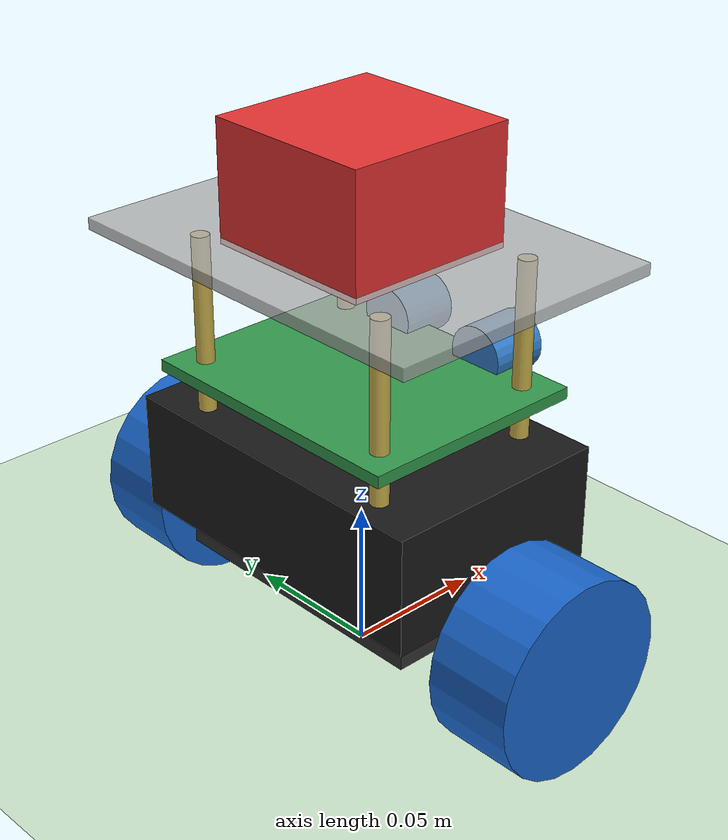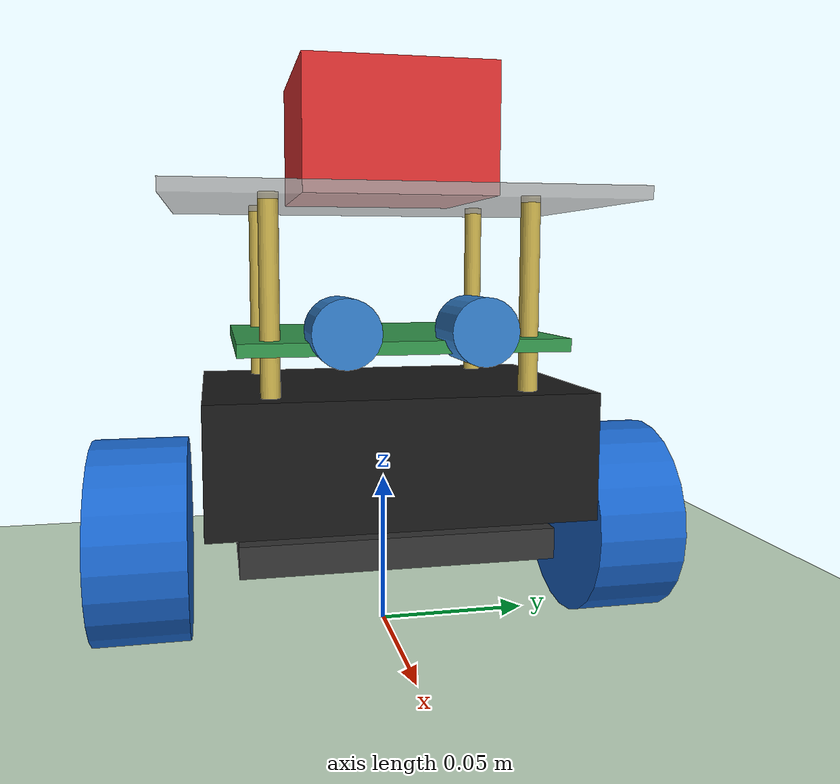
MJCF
<mujoco model="yahboom_3d_realistic">
    <compiler angle="radian"/>
    <option timestep="0.005" gravity="0 0 -9.81"/>

    <worldbody>
        <light pos="0 0 3" dir="0 0 -1"/>
        <geom name="floor" type="plane" size="5 5 0.1" rgba="0.8 0.9 0.8 1"/>

        <!-- CHASSIS -->
        <body name="chassis" pos="0 0 0.033">
            <freejoint name="root_joint"/>

            <geom name="base_bracket" type="box" pos="0 0 0" size="0.03 0.05 0.005" mass="0.1" rgba="0.2 0.2 0.2 1"/>
            <geom name="battery_box" type="box" pos="0 0 0.03" size="0.04 0.06 0.02" mass="0.6" rgba="0.1 0.1 0.1 1"/>
            <geom name="pcb" type="box" pos="0 0 0.065" size="0.04 0.05 0.002" mass="0.1" rgba="0.2 0.6 0.3 1"/>

            <geom name="eye_left" type="cylinder" pos="0.04 0.02 0.07" size="0.01 0.01" euler="0 1.5708 0" mass="0.01" rgba="0.2 0.5 0.8 1"/>
            <geom name="eye_right" type="cylinder" pos="0.04 -0.02 0.07" size="0.01 0.01" euler="0 1.5708 0" mass="0.01" rgba="0.2 0.5 0.8 1"/>

            <geom name="top_plate" type="box" pos="0 0 0.11" size="0.05 0.07 0.002" mass="0.05" rgba="0.7 0.7 0.7 0.8"/>

            <geom type="cylinder" pos="0.03 0.04 0.07" size="0.003 0.04" mass="0.01" rgba="0.8 0.7 0.3 1"/>
            <geom type="cylinder" pos="0.03 -0.04 0.07" size="0.003 0.04" mass="0.01" rgba="0.8 0.7 0.3 1"/>
            <geom type="cylinder" pos="-0.03 0.04 0.07" size="0.003 0.04" mass="0.01" rgba="0.8 0.7 0.3 1"/>
            <geom type="cylinder" pos="-0.03 -0.04 0.07" size="0.003 0.04" mass="0.01" rgba="0.8 0.7 0.3 1"/>

            <!-- DYNAMIC PAYLOAD -->
            <body name="payload_body" pos="0 0 0.13">
                <geom name="payload_geom" type="box" size="0.03 0.03 0.02" mass="0.0" rgba="0.9 0.2 0.2 1"/>
            </body>

            <!-- LEFT WHEEL -->
            <body name="left_wheel" pos="0 0.08 0">
                <joint name="left_motor_joint" type="hinge" axis="0 1 0" damping="0.01"/>
                <geom type="cylinder" size="0.033 0.015" mass="0.05" rgba="0.1 0.4 0.8 1" euler="1.5708 0 0"/>
            </body>

            <!-- RIGHT WHEEL -->
            <body name="right_wheel" pos="0 -0.08 0">
                <joint name="right_motor_joint" type="hinge" axis="0 1 0" damping="0.01"/>
                <geom type="cylinder" size="0.033 0.015" mass="0.05" rgba="0.1 0.4 0.8 1" euler="1.5708 0 0"/>
            </body>
        </body>
    </worldbody>

    <!-- UPGRADED MOTOR TORQUE -->
    <actuator>
        <motor name="left_motor" joint="left_motor_joint" gear="1" ctrlrange="-4.0 4.0" ctrllimited="true"/>
        <motor name="right_motor" joint="right_motor_joint" gear="1" ctrlrange="-4.0 4.0" ctrllimited="true"/>
    </actuator>
</mujoco>
